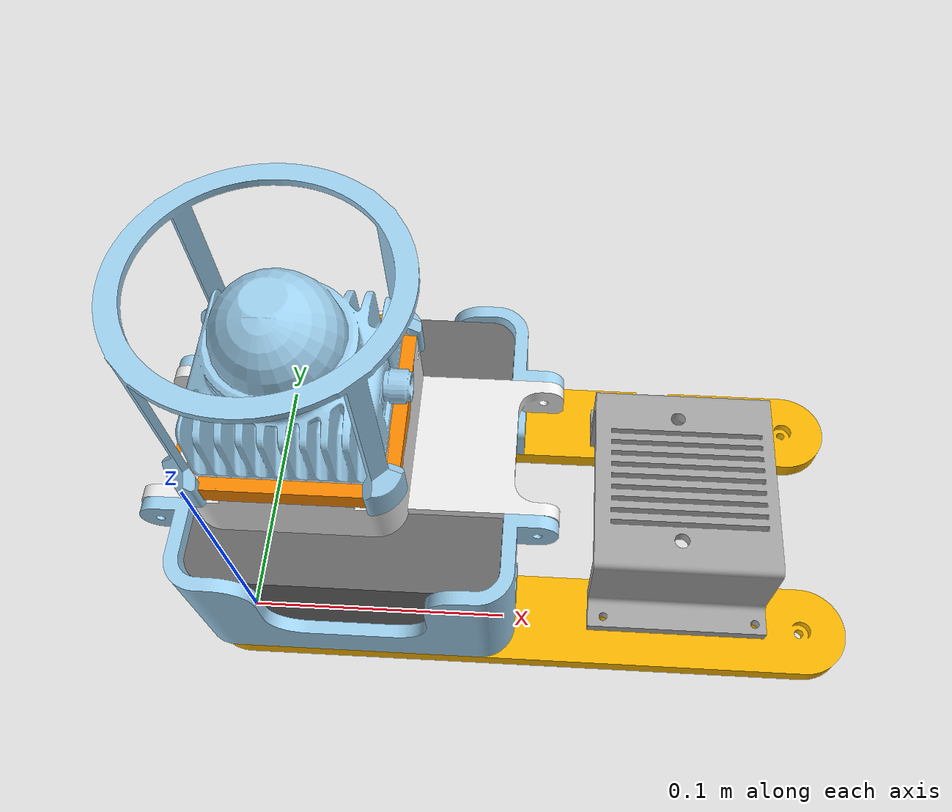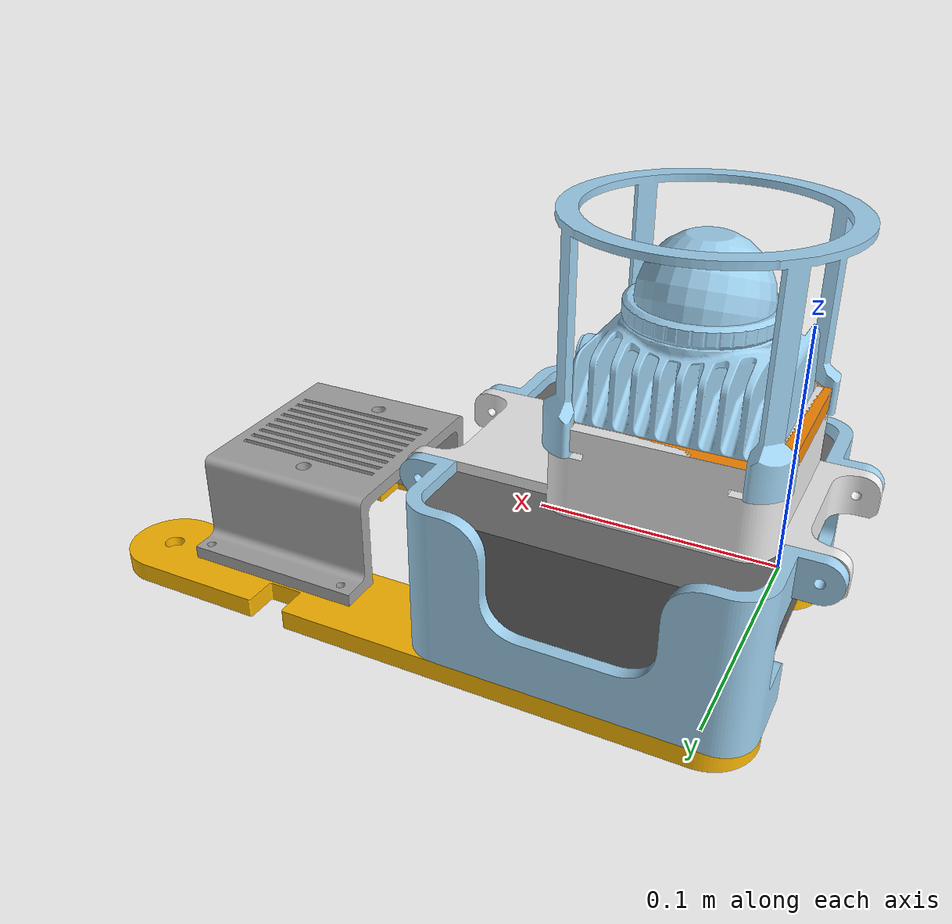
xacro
<robot xmlns:xacro="http://www.ros.org/wiki/xacro" name="onshape">
    <link name="nuc_top">
        <visual>
            <origin xyz="0.17000000298023223988 0.045999999999999999223 0.038800000000000001155" rpy="0 -0 -1.570796326794896558" />
            <geometry>
                <mesh filename="file://$(find legged_perceptive_description)/urdf/nuc_and_lidar/power_holder.stl"/>
            </geometry>
            <material name="power_holder_material">
                <color rgba="0.64705882352941179736 0.64705882352941179736 0.64705882352941179736 1.0"/>
            </material>
        </visual>
        <collision>
            <origin xyz="0.17000000298023223988 0.045999999999999999223 0.038800000000000001155" rpy="0 -0 -1.570796326794896558" />
            <geometry>
                <mesh filename="file://$(find legged_perceptive_description)/urdf/nuc_and_lidar/power_holder.stl"/>
            </geometry>
        </collision>
        <visual>
            <origin xyz="0.026999998021847469026 0.045828042735641602579 0.081612763303492708022" rpy="6.1232339965243438095e-17 4.2093469295929222686e-14 -3.2595885425187037263e-31" />
            <geometry>
                <mesh filename="file://$(find legged_perceptive_description)/urdf/nuc_and_lidar/mid-360_lidar_unit.stl"/>
            </geometry>
            <material name="mid-360_lidar_unit_material">
                <color rgba="0.61568627450980395466 0.81176470588235294379 0.92941176470588238168 1.0"/>
            </material>
        </visual>
        <collision>
            <origin xyz="0.026999998021847469026 0.045828042735641602579 0.081612763303492708022" rpy="6.1232339965243438095e-17 4.2093469295929222686e-14 -3.2595885425187037263e-31" />
            <geometry>
                <mesh filename="file://$(find legged_perceptive_description)/urdf/nuc_and_lidar/mid-360_lidar_unit.stl"/>
            </geometry>
        </collision>
        <visual>
            <origin xyz="0.043699998189508933166 0.046000000420958413183 0.054999999999999993339" rpy="3.141592653589793116 -0 -1.570796326794896558" />
            <geometry>
                <mesh filename="file://$(find legged_perceptive_description)/urdf/nuc_and_lidar/nuc.stl"/>
            </geometry>
            <material name="nuc_material">
                <color rgba="0.4000000000000000222 0.4000000000000000222 0.4000000000000000222 1.0"/>
            </material>
        </visual>
        <collision>
            <origin xyz="0.043699998189508933166 0.046000000420958413183 0.054999999999999993339" rpy="3.141592653589793116 -0 -1.570796326794896558" />
            <geometry>
                <mesh filename="file://$(find legged_perceptive_description)/urdf/nuc_and_lidar/nuc.stl"/>
            </geometry>
        </collision>
        <visual>
            <origin xyz="0.11750000188499688802 0.092000000234693346535 -3.4694469519536141888e-18" rpy="0 -5.5511151231257827021e-17 3.141592653589793116" />
            <geometry>
                <mesh filename="file://$(find legged_perceptive_description)/urdf/nuc_and_lidar/nuc_enclosure_side.stl"/>
            </geometry>
            <material name="nuc_enclosure_side_material">
                <color rgba="0.61568627450980395466 0.81176470588235294379 0.92941176470588238168 1.0"/>
            </material>
        </visual>
        <collision>
            <origin xyz="0.11750000188499688802 0.092000000234693346535 -3.4694469519536141888e-18" rpy="0 -5.5511151231257827021e-17 3.141592653589793116" />
            <geometry>
                <mesh filename="file://$(find legged_perceptive_description)/urdf/nuc_and_lidar/nuc_enclosure_side.stl"/>
            </geometry>
        </collision>
        <visual>
            <origin xyz="-0.018000001978128968294 0.017400000130385184088 0.059000000059604665315" rpy="3.141592653589793116 -0 0" />
            <geometry>
                <mesh filename="file://$(find legged_perceptive_description)/urdf/nuc_and_lidar/lidar_base.stl"/>
            </geometry>
            <material name="lidar_base_material">
                <color rgba="0.97254901960784312376 0.52941176470588235947 0.0039215686274509803377 1.0"/>
            </material>
        </visual>
        <collision>
            <origin xyz="-0.018000001978128968294 0.017400000130385184088 0.059000000059604665315" rpy="3.141592653589793116 -0 0" />
            <geometry>
                <mesh filename="file://$(find legged_perceptive_description)/urdf/nuc_and_lidar/lidar_base.stl"/>
            </geometry>
        </collision>
        <visual>
            <origin xyz="-0.030500001884996894019 5.5879373633057212225e-11 0" rpy="0 -0 0" />
            <geometry>
                <mesh filename="file://$(find legged_perceptive_description)/urdf/nuc_and_lidar/nuc_enclosure_side.stl"/>
            </geometry>
            <material name="nuc_enclosure_side_material">
                <color rgba="0.61568627450980395466 0.81176470588235294379 0.92941176470588238168 1.0"/>
            </material>
        </visual>
        <collision>
            <origin xyz="-0.030500001884996894019 5.5879373633057212225e-11 0" rpy="0 -0 0" />
            <geometry>
                <mesh filename="file://$(find legged_perceptive_description)/urdf/nuc_and_lidar/nuc_enclosure_side.stl"/>
            </geometry>
        </collision>
        <visual>
            <origin xyz="0.10975000262260439787 0.074500000216066925018 -9.039020153071420996e-18" rpy="2.1263491415581675379e-17 1.0678835712080547691e-16 -1.1102230246251562939e-16" />
            <geometry>
                <mesh filename="file://$(find legged_perceptive_description)/urdf/nuc_and_lidar/mounting_rail.stl"/>
            </geometry>
            <material name="mounting_rail_material">
                <color rgba="0.98039215686274505668 0.71372549019607844922 0.0039215686274509803377 1.0"/>
            </material>
        </visual>
        <collision>
            <origin xyz="0.10975000262260439787 0.074500000216066925018 -9.039020153071420996e-18" rpy="2.1263491415581675379e-17 1.0678835712080547691e-16 -1.1102230246251562939e-16" />
            <geometry>
                <mesh filename="file://$(find legged_perceptive_description)/urdf/nuc_and_lidar/mounting_rail.stl"/>
            </geometry>
        </collision>
        <visual>
            <origin xyz="-0.018000001978129134828 0.017500000130385186953 0.059000000059604644498" rpy="3.141592653589793116 -0 0" />
            <geometry>
                <mesh filename="file://$(find legged_perceptive_description)/urdf/nuc_and_lidar/nuc_top.stl"/>
            </geometry>
            <material name="nuc_top_material">
                <color rgba="0.91764705882352937127 0.91764705882352937127 0.91764705882352937127 1.0"/>
            </material>
        </visual>
        <collision>
            <origin xyz="-0.018000001978129134828 0.017500000130385186953 0.059000000059604644498" rpy="3.141592653589793116 -0 0" />
            <geometry>
                <mesh filename="file://$(find legged_perceptive_description)/urdf/nuc_and_lidar/nuc_top.stl"/>
            </geometry>
        </collision>
        <visual>
            <origin xyz="0.071999998021870695308 0.074400000160187468312 0.05910000005960466124" rpy="3.141592653589793116 -0 3.141592653589793116" />
            <geometry>
                <mesh filename="file://$(find legged_perceptive_description)/urdf/nuc_and_lidar/lidar_open_guard.stl"/>
            </geometry>
            <material name="lidar_open_guard_material">
                <color rgba="0.61568627450980395466 0.81176470588235294379 0.92941176470588238168 1.0"/>
            </material>
        </visual>
        <collision>
            <origin xyz="0.071999998021870695308 0.074400000160187468312 0.05910000005960466124" rpy="3.141592653589793116 -0 3.141592653589793116" />
            <geometry>
                <mesh filename="file://$(find legged_perceptive_description)/urdf/nuc_and_lidar/lidar_open_guard.stl"/>
            </geometry>
        </collision>
        <visual>
            <origin xyz="0.026999998021870863507 0.0458882386201147352 0.13360000005960459557" rpy="-3.141592653589793116 2.4370900068556357821e-17 3.141592653589793116" />
            <geometry>
                <mesh filename="file://$(find legged_perceptive_description)/urdf/nuc_and_lidar/frame.stl"/>
            </geometry>
            <material name="frame_material">
                <color rgba="0.61568627450980395466 0.81176470588235294379 0.92941176470588238168 1.0"/>
            </material>
        </visual>
        <collision>
            <origin xyz="0.026999998021870863507 0.0458882386201147352 0.13360000005960459557" rpy="-3.141592653589793116 2.4370900068556357821e-17 3.141592653589793116" />
            <geometry>
                <mesh filename="file://$(find legged_perceptive_description)/urdf/nuc_and_lidar/frame.stl"/>
            </geometry>
        </collision>
        <visual>
            <origin xyz="0.10975000262260437012 -0.017500000074505805969 0" rpy="0 -0 0" />
            <geometry>
                <mesh filename="file://$(find legged_perceptive_description)/urdf/nuc_and_lidar/mounting_rail.stl"/>
            </geometry>
            <material name="mounting_rail_material">
                <color rgba="0.98039215686274505668 0.71372549019607844922 0.0039215686274509803377 1.0"/>
            </material>
        </visual>
        <collision>
            <origin xyz="0.10975000262260437012 -0.017500000074505805969 0" rpy="0 -0 0" />
            <geometry>
                <mesh filename="file://$(find legged_perceptive_description)/urdf/nuc_and_lidar/mounting_rail.stl"/>
            </geometry>
        </collision>
        <inertial>
            <origin xyz="0.041012235722627250756 0.045973047634700912878 0.041523664098472856665" rpy="0 0 0"/>
            <mass value="1.6268089630197246631" />
            <inertia ixx="0.0031651869174057333661" ixy="-6.1654230755559632426e-07" ixz="0.00027015967922996953713" iyy="0.0031068805832771741876" iyz="2.7450625644812607493e-06" izz="0.0031383494429039287231" />
        </inertial>
    </link>

</robot>
